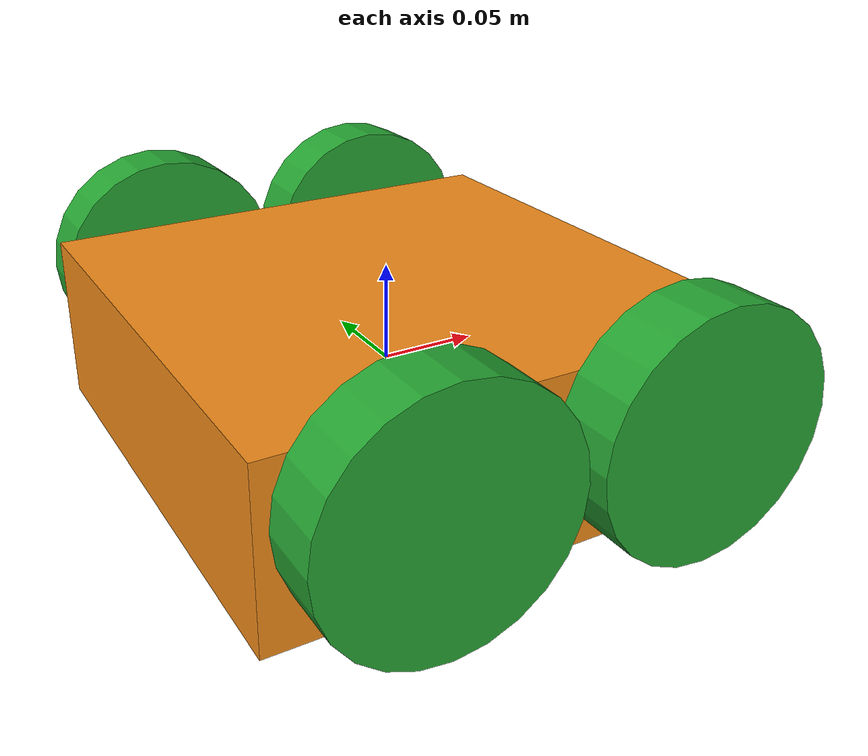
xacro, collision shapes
<?xml version='1.0'?>

<robot name="mogi_bot" xmlns:xacro="http://www.ros.org/wiki/xacro">

    <xacro:include filename="$(find bme_gazebo_basics)/urdf/mogi_bot.gazebo" />
    <xacro:include filename="$(find bme_gazebo_basics)/urdf/materials.xacro" />

  <link name="base_footprint"></link>

  <joint name="base_footprint_joint" type="fixed">
    <origin xyz="0 0 0" rpy="0 0 0" />
    <parent link="base_footprint"/>
    <child link="base_link" />
  </joint>

  <link name='base_link'>
    <pose>0 0 0.1 0 0 0</pose>

    <inertial>
      <mass value="15.0"/>
      <origin xyz="0 0 0" rpy="0 0 0"/>
      <inertia
          ixx="0.1" ixy="0" ixz="0"
          iyy="0.1" iyz="0"
          izz="0.1"
      />
    </inertial>

    <collision name='collision'>
      <origin xyz="0 0 0" rpy="0 0 0"/>
      <geometry>
        <box size=".256 .256 .088"/>
      </geometry>
    </collision>

    <visual name='base_link_visual'>
      <origin xyz="0 0 0" rpy="0 0 3.1416"/>
      <geometry>
        <!--box size=".4 .2 .1"/-->
        <mesh filename = "package://bme_gazebo_basics/meshes/body_frame.dae"/>
      </geometry>
      <material name="orange"/>
    </visual>
  </link>

  <joint type="continuous" name="front_left_wheel_joint">
    <origin xyz="0.064 0.15 0.017" rpy="0 0 0"/>
    <child link="front_left_wheel"/>
    <parent link="base_link"/>
    <axis xyz="0 1 0" rpy="0 0 0"/>
    <limit effort="10000" velocity="1000"/>
    <dynamics damping="1.0" friction="1.0"/>
  </joint>

  <link name='front_left_wheel'>
    <inertial>
      <mass value="5.0"/>
      <origin xyz="0 0 0" rpy="0 1.5707 1.5707"/>
      <inertia
          ixx="0.1" ixy="0" ixz="0"
          iyy="0.1" iyz="0"
          izz="0.1"
      />
    </inertial>

    <collision name='collision'>
      <origin xyz="0 0 0" rpy="0 1.5707 1.5707"/>
      <geometry>
        <cylinder radius=".06" length=".0315"/>
      </geometry>
    </collision>

    <visual name='front_left_wheel_visual'>
      <origin xyz="0 0 0" rpy="0 1.5707 1.5707"/>
      <geometry>
        <!--cylinder radius=".1" length=".05"/-->
        <mesh filename = "package://bme_gazebo_basics/meshes/mecanum_wheel.dae"/>
      </geometry>
      <material name="green"/>
    </visual>
  </link>

   <joint type="continuous" name="rear_left_wheel_joint">
    <origin xyz="-0.064 0.15 0.017" rpy="0 0 0"/>
    <child link="rear_left_wheel"/>
    <parent link="base_link"/>
    <axis xyz="0 1 0" rpy="0 0 0"/>
    <limit effort="10000" velocity="1000"/>
    <dynamics damping="1.0" friction="1.0"/>
  </joint>

  <link name='rear_left_wheel'>
    <inertial>
      <mass value="5.0"/>
      <origin xyz="0 0 0" rpy="0 1.5707 1.5707"/>
      <inertia
          ixx="0.1" ixy="0" ixz="0"
          iyy="0.1" iyz="0"
          izz="0.1"
      />
    </inertial>

    <collision name='collision'>
      <origin xyz="0 0 0" rpy="0 1.5707 1.5707"/>
      <geometry>
        <cylinder radius=".06" length=".0315"/>
      </geometry>
    </collision>

    <visual name='rear_left_wheel_visual'>
      <origin xyz="0 0 0" rpy="0 1.5707 1.5707"/>
      <geometry>
        <!--cylinder radius=".1" length=".05"/-->
        <mesh filename = "package://bme_gazebo_basics/meshes/mecanum_wheel.dae"/>
      </geometry>
      <material name="green"/>
    </visual>
  </link>

  <joint type="continuous" name="front_right_wheel_joint">
    <origin xyz="0.064 -0.15 0.017" rpy="0 0 3.1416"/>
    <child link="front_right_wheel"/>
    <parent link="base_link"/>
    <axis xyz="0 1 0" rpy="0 0 0"/>
    <limit effort="10000" velocity="1000"/>
    <dynamics damping="1.0" friction="1.0"/>
  </joint>

  <link name='front_right_wheel'>
    <inertial>
      <mass value="5.0"/>
      <origin xyz="0 0 0" rpy="0 1.5707 1.5707"/>
      <inertia
          ixx="0.1" ixy="0" ixz="0"
          iyy="0.1" iyz="0"
          izz="0.1"
      />
    </inertial>

    <collision name='collision'>
      <origin xyz="0 0 0" rpy="0 1.5707 1.5707"/>
      <geometry>
        <cylinder radius=".06" length=".0315"/>
      </geometry>
    </collision>

    <visual name='front_right_wheel_visual'>
      <origin xyz="0 0 0" rpy="0 1.5707 1.5707"/>
      <geometry>
        <!--cylinder radius=".1" length=".05"/-->
        <mesh filename = "package://bme_gazebo_basics/meshes/mecanum_wheel.dae"/>
      </geometry>
      <material name="green"/>
    </visual>
  </link>

    <joint type="continuous" name="rear_right_wheel_joint">
    <origin xyz="-0.064 -0.15 0.017" rpy="0 0 3.1416"/>
    <child link="rear_right_wheel"/>
    <parent link="base_link"/>
    <axis xyz="0 1 0" rpy="0 0 0"/>
    <limit effort="10000" velocity="1000"/>
    <dynamics damping="1.0" friction="1.0"/>
  </joint>

  <link name='rear_right_wheel'>
    <inertial>
      <mass value="5.0"/>
      <origin xyz="0 0 0" rpy="0 1.5707 1.5707"/>
      <inertia
          ixx="0.1" ixy="0" ixz="0"
          iyy="0.1" iyz="0"
          izz="0.1"
      />
    </inertial>

    <collision name='collision'>
      <origin xyz="0 0 0" rpy="0 1.5707 1.5707"/>
      <geometry>
        <cylinder radius=".06" length=".0315"/>
      </geometry>
    </collision>

    <visual name='rear_right_wheel_visual'>
      <origin xyz="0 0 0" rpy="0 1.5707 1.5707"/>
      <geometry>
        <!--cylinder radius=".1" length=".05"/-->
        <mesh filename = "package://bme_gazebo_basics/meshes/mecanum_wheel.dae"/>
      </geometry>
      <material name="green"/>
    </visual>
  </link>

</robot>
